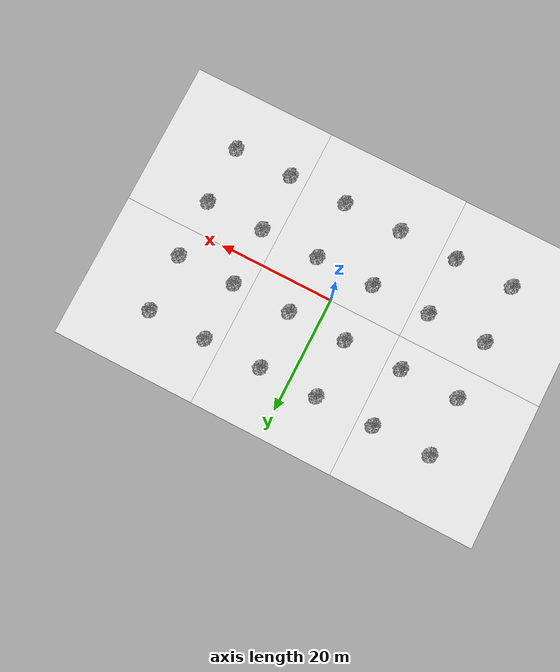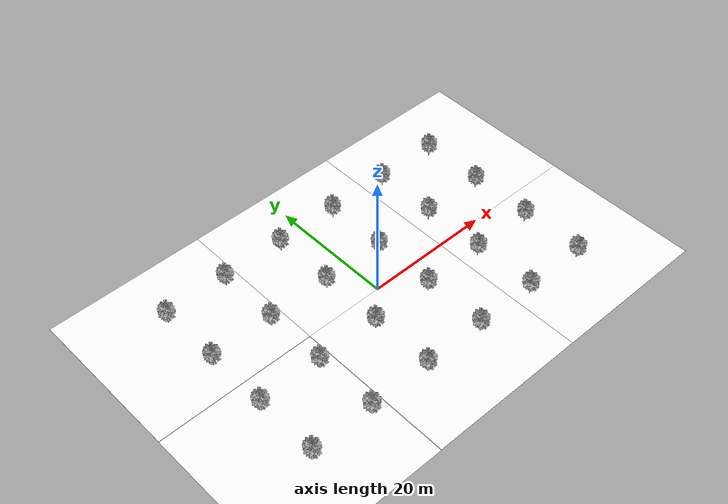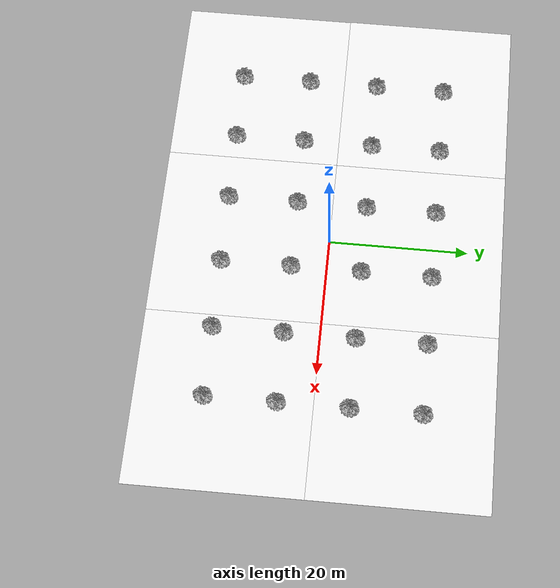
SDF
<?xml version="1.0" encoding="UTF-8"?>
<sdf version="1.9">
	<world name="apple_orchard">
		<physics type="ode">
			<max_step_size>0.01</max_step_size>
			<real_time_factor>1.0</real_time_factor>
			<real_time_update_rate>125</real_time_update_rate>
		</physics>
		<gravity>0 0 -9.8</gravity>
		<magnetic_field>6e-06 2.3e-05 -4.2e-05</magnetic_field>
		<atmosphere type="adiabatic" />
		<scene>
			<grid>false</grid>
			<ambient>0.4 0.4 0.4 1</ambient>
			<background>0.7 0.7 0.7 1</background>
			<shadows>true</shadows>
		</scene>

		<include>
			<uri>model://grasspatch_no_collision</uri>
			<name>grasspatch_0</name>
			<pose>-25 -12.5 0 0 0 0</pose>
		</include>
		<include>
			<uri>model://grasspatch_no_collision</uri>
			<name>grasspatch_1</name>
			<pose>0 -12.5 0 0 0 0</pose>
		</include>
		<include>
			<uri>model://grasspatch_no_collision</uri>
			<name>grasspatch_2</name>
			<pose>25 -12.5 0 0 0 0</pose>
		</include>

		<include>
			<uri>model://grasspatch_no_collision</uri>
			<name>grasspatch_3</name>
			<pose>-25 12.5 0 0 0 0</pose>
		</include>
		<include>
			<uri>model://grasspatch_no_collision</uri>
			<name>grasspatch_4</name>
			<pose>0 12.5 0 0 0 0</pose>
		</include>
		<include>
			<uri>model://grasspatch_no_collision</uri>
			<name>grasspatch_5</name>
			<pose>25 12.5 0 0 0 0</pose>
		</include>

		<include>
			<uri>model://appletree</uri>
			<name>AppleTree_0</name>
			<pose>-25 -15 0 0 0 0</pose>
		</include>
		<include>
			<uri>model://appletree</uri>
			<name>AppleTree_1</name>
			<pose>-25 -5 0 0 0 0</pose>
		</include>
		<include>
			<uri>model://appletree</uri>
			<name>AppleTree_2</name>
			<pose>-25 5 0 0 0 0</pose>
		</include>
		<include>
			<uri>model://appletree</uri>
			<name>AppleTree_3</name>
			<pose>-25 15 0 0 0 0</pose>
		</include>
		<include>
			<uri>model://appletree</uri>
			<name>AppleTree_4</name>
			<pose>-15 -15 0 0 0 0</pose>
		</include>
		<include>
			<uri>model://appletree</uri>
			<name>AppleTree_5</name>
			<pose>-15 -5 0 0 0 0</pose>
		</include>
		<include>
			<uri>model://appletree</uri>
			<name>AppleTree_6</name>
			<pose>-15 5 0 0 0 0</pose>
		</include>
		<include>
			<uri>model://appletree</uri>
			<name>AppleTree_7</name>
			<pose>-15 15 0 0 0 0</pose>
		</include>
		<include>
			<uri>model://appletree</uri>
			<name>AppleTree_8</name>
			<pose>-5 -15 0 0 0 0</pose>
		</include>
		<include>
			<uri>model://appletree</uri>
			<name>AppleTree_9</name>
			<pose>-5 -5 0 0 0 0</pose>
		</include>
		<include>
			<uri>model://appletree</uri>
			<name>AppleTree_10</name>
			<pose>-5 5 0 0 0 0</pose>
		</include>
		<include>
			<uri>model://appletree</uri>
			<name>AppleTree_11</name>
			<pose>-5 15 0 0 0 0</pose>
		</include>
		<include>
			<uri>model://appletree</uri>
			<name>AppleTree_12</name>
			<pose>5 -15 0 0 0 0</pose>
		</include>
		<include>
			<uri>model://appletree</uri>
			<name>AppleTree_13</name>
			<pose>5 -5 0 0 0 0</pose>
		</include>
		<include>
			<uri>model://appletree</uri>
			<name>AppleTree_14</name>
			<pose>5 5 0 0 0 0</pose>
		</include>
		<include>
			<uri>model://appletree</uri>
			<name>AppleTree_15</name>
			<pose>5 15 0 0 0 0</pose>
		</include>
		<include>
			<uri>model://appletree</uri>
			<name>AppleTree_16</name>
			<pose>15 -15 0 0 0 0</pose>
		</include>
		<include>
			<uri>model://appletree</uri>
			<name>AppleTree_17</name>
			<pose>15 -5 0 0 0 0</pose>
		</include>
		<include>
			<uri>model://appletree</uri>
			<name>AppleTree_18</name>
			<pose>15 5 0 0 0 0</pose>
		</include>
		<include>
			<uri>model://appletree</uri>
			<name>AppleTree_19</name>
			<pose>15 15 0 0 0 0</pose>
		</include>
		<include>
			<uri>model://appletree</uri>
			<name>AppleTree_20</name>
			<pose>25 -15 0 0 0 0</pose>
		</include>
		<include>
			<uri>model://appletree</uri>
			<name>AppleTree_21</name>
			<pose>25 -5 0 0 0 0</pose>
		</include>
		<include>
			<uri>model://appletree</uri>
			<name>AppleTree_22</name>
			<pose>25 5 0 0 0 0</pose>
		</include>
		<include>
			<uri>model://appletree</uri>
			<name>AppleTree_23</name>
			<pose>25 15 0 0 0 0</pose>
		</include>

		<!-- Lighting & coordinates (unchanged) -->
		<light name="sunUTC" type="directional">
			<pose>0 0 500 0 0 0</pose>
			<cast_shadows>true</cast_shadows>
			<intensity>1</intensity>
			<direction>0.001 0.625 -0.78</direction>
			<diffuse>0.904 0.904 0.904 1</diffuse>
			<specular>0.271 0.271 0.271 1</specular>
			<attenuation>
				<range>2000</range>
				<linear>0</linear>
				<constant>1</constant>
				<quadratic>0</quadratic>
			</attenuation>
			<spot>
				<inner_angle>0</inner_angle>
				<outer_angle>0</outer_angle>
				<falloff>0</falloff>
			</spot>
		</light>
		<spherical_coordinates>
			<surface_model>EARTH_WGS84</surface_model>
			<world_frame_orientation>ENU</world_frame_orientation>
			<latitude_deg>59.368777357683165</latitude_deg>
			<longitude_deg>10.445698036100689</longitude_deg>
			<elevation>0</elevation>
		</spherical_coordinates>
	</world>
</sdf>

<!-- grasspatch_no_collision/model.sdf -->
<sdf version="1.4">
    <model name="grasspatch_no_collision">
        <static>true</static>
        <link name="link">

        <collision name="ground_collision">
            <pose>0 0 0 0 0 0</pose>
            <geometry>
            <plane>
                <normal>0 0 1</normal>
                <size>25 25</size>
            </plane>
            </geometry>
            <surface>
            <contact>
                <collide_bitmask>0xFFFF</collide_bitmask>
            </contact>
            <friction>
                <ode>
                <mu>0.5</mu>
                <mu2>0.5</mu2>
                </ode>
            </friction>
            </surface>
        </collision>

            <visual name="visual_s10">
                <pose>0 0 0 0 0 0</pose>
                <cast_shadows>false</cast_shadows>
                <geometry>
                    <plane>
                        <normal>0 0 1</normal>
                        <size>25 25</size>
                    </plane>
                </geometry>
                <material>
                    <diffuse>1.0 1.0 1.0</diffuse>
                    <specular>1.0 1.0 1.0</specular>
                    <pbr>
                        <metal>
                            <albedo_map>materials/textures/grass_dry.png</albedo_map>
                            <normal_map>materials/textures/grass_dry.png</normal_map>
                        </metal>
                    </pbr>
                </material>
            </visual>
        </link>
    </model>
</sdf>

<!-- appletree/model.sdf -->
<sdf version="1.9">
  <model name="appletree">
    <static>true</static>
    <link name="link">

      <!-- Use the exact same mesh for collisions! -->
      <collision name="collision">
        <!-- Exact same pose as the visual -->
        <pose>0 0 0 0 0 0</pose>
        <geometry>
          <mesh>
            <uri>model://appletree/meshes/appletree.obj</uri>
            <scale>8 8 8</scale>
          </mesh>
        </geometry>
      </collision>

      <!-- The visual mesh -->
      <visual name="visual">
        <pose>0 0 0 0 0 0</pose>
        <geometry>
          <mesh>
            <uri>model://appletree/meshes/appletree.obj</uri>
            <scale>8 8 8</scale>
          </mesh>
        </geometry>
      </visual>

    </link>
  </model>
</sdf>
